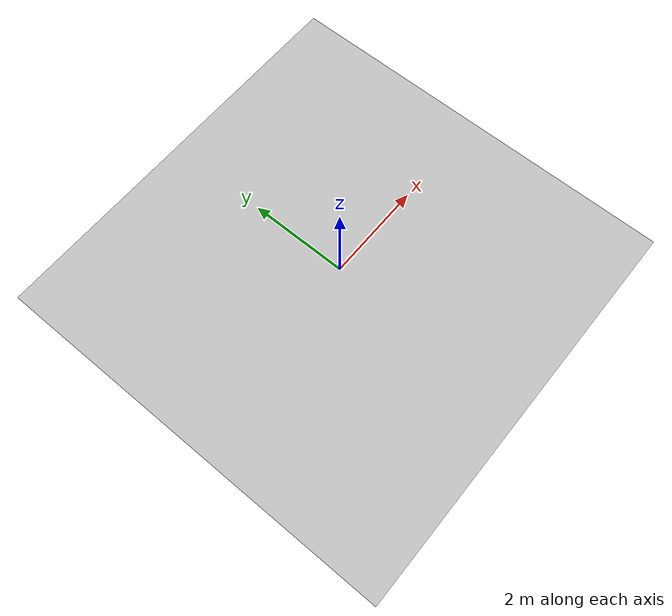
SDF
<sdf version='1.6'>
  <world name='default'>
    <include>
      <uri>model://sun</uri>
    </include>

    <include>
      <name>farmland</name>
      <uri>model://farmland</uri>
      <pose>0 0 0 0 0 0</pose>
    </include>

    <gui fullscreen='0'>
      <camera name='user_camera'>
        <pose frame=''>9.0 -12.0 6.0 0.0 0.3 2.2</pose>
        <view_controller>orbit</view_controller>
        <projection_type>perspective</projection_type>
      </camera>
    </gui>

  </world>
</sdf>

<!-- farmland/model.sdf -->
<sdf version="1.5">
  <model name="farmland">
    <pose>0 0 0 0 0 0</pose>
    <static>true</static>
    <link name="body">
      <visual name="visual">
        <geometry>
          <mesh><uri>model://farmland/media/63m_plane.dae</uri></mesh>
        </geometry>
	<material>
          <script>
            <uri>model://farmland/media/scripts</uri>
            <uri>model://farmland/media/Textures</uri>
            <name>RepeatedGrass/Diffuse</name>
          </script>
        </material>
      </visual>
      <collision name="collision">
        <geometry>
          <mesh><uri>model://farmland/media/63m_plane.dae</uri></mesh>
        </geometry>
      </collision>
    </link>
  </model>
</sdf>
